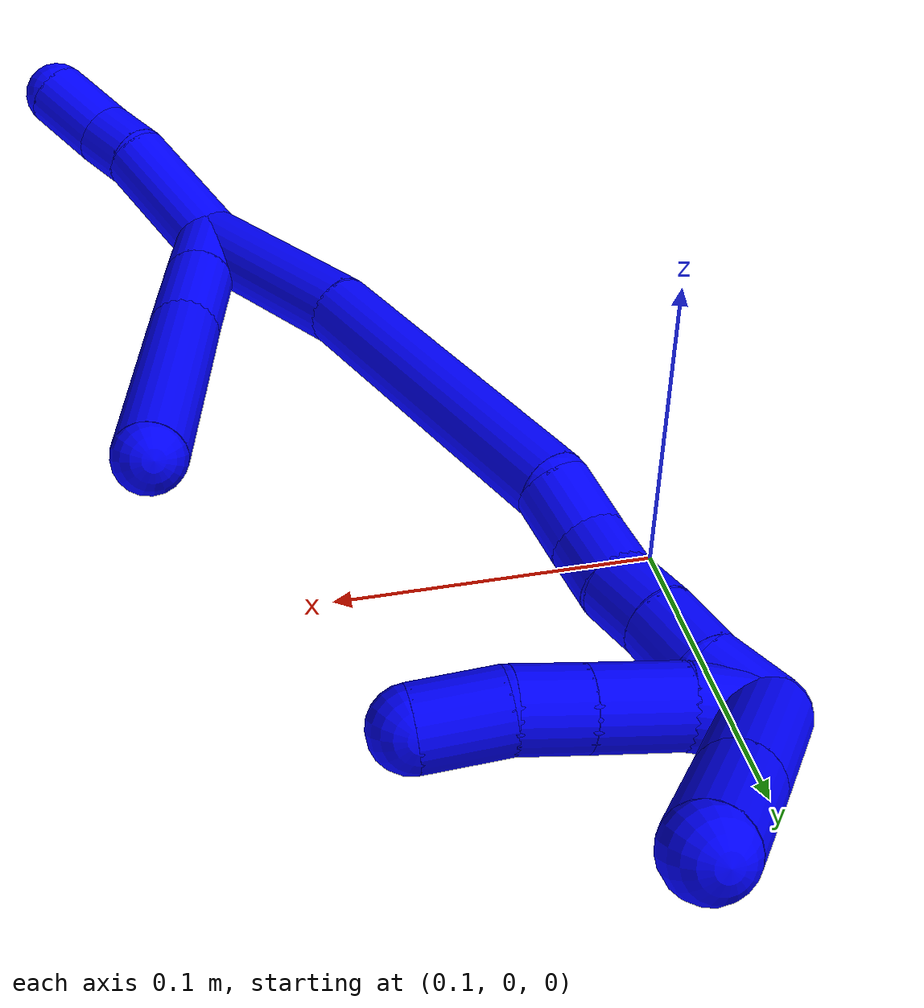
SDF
<sdf version="1.7">
 <world name="default">
  <model name="1">
   <static>0</static>
   <link name="1">
    <collision name="collision-cylinder-e_1_2_8">
     <pose>-0.006136 0.004923 -0.010705 -2.71053 -0.480085 1.68209</pose>
     <geometry><cylinder><radius>0.0125</radius><length>0.026569</length></cylinder></geometry>
     <surface>
      <friction><ode><mu>1.16</mu><mu2>1.16</mu2><slip1>0</slip1><slip2>0</slip2></ode></friction>
      <contact><ode><kp>1e+06</kp><kd>1</kd><max_vel>0</max_vel><min_depth>0.001</min_depth></ode></contact>
     </surface>
    </collision>
    <visual name="visual-cylinder-e_1_2_8">
     <pose>-0.006136 0.004923 -0.010705 -2.71053 -0.480085 1.68209</pose>
     <geometry><cylinder><radius>0.0125</radius><length>0.026569</length></cylinder></geometry>
     <material><ambient>0 0 1 1</ambient></material>
    </visual>
    <collision name="collision-cylinder-e_2_8_9">
     <pose>-0.01994 0.01596 -0.036441 -2.75528 -0.441518 1.70782</pose>
     <geometry><cylinder><radius>0.0125</radius><length>0.035896</length></cylinder></geometry>
     <surface>
      <friction><ode><mu>1.16</mu><mu2>1.16</mu2><slip1>0</slip1><slip2>0</slip2></ode></friction>
      <contact><ode><kp>1e+06</kp><kd>1</kd><max_vel>0</max_vel><min_depth>0.001</min_depth></ode></contact>
     </surface>
    </collision>
    <visual name="visual-cylinder-e_2_8_9">
     <pose>-0.01994 0.01596 -0.036441 -2.75528 -0.441518 1.70782</pose>
     <geometry><cylinder><radius>0.0125</radius><length>0.035896</length></cylinder></geometry>
     <material><ambient>0 0 1 1</ambient></material>
    </visual>
    <collision name="collision-cylinder-e_3_9_6">
     <pose>-0.0438 0.033866 -0.090387 -2.84739 -0.378927 1.82587</pose>
     <geometry><cylinder><radius>0.0125</radius><length>0.087535</length></cylinder></geometry>
     <surface>
      <friction><ode><mu>1.16</mu><mu2>1.16</mu2><slip1>0</slip1><slip2>0</slip2></ode></friction>
      <contact><ode><kp>1e+06</kp><kd>1</kd><max_vel>0</max_vel><min_depth>0.001</min_depth></ode></contact>
     </surface>
    </collision>
    <visual name="visual-cylinder-e_3_9_6">
     <pose>-0.0438 0.033866 -0.090387 -2.84739 -0.378927 1.82587</pose>
     <geometry><cylinder><radius>0.0125</radius><length>0.087535</length></cylinder></geometry>
     <material><ambient>0 0 1 1</ambient></material>
    </visual>
    <collision name="collision-cylinder-e_1_2_10">
     <pose>-0.005237 -0.019133 0.015352 0.894609 -0.210323 -0.101186</pose>
     <geometry><cylinder><radius>0.0125</radius><length>0.050168</length></cylinder></geometry>
     <surface>
      <friction><ode><mu>1.16</mu><mu2>1.16</mu2><slip1>0</slip1><slip2>0</slip2></ode></friction>
      <contact><ode><kp>1e+06</kp><kd>1</kd><max_vel>0</max_vel><min_depth>0.001</min_depth></ode></contact>
     </surface>
    </collision>
    <visual name="visual-cylinder-e_1_2_10">
     <pose>-0.005237 -0.019133 0.015352 0.894609 -0.210323 -0.101186</pose>
     <geometry><cylinder><radius>0.0125</radius><length>0.050168</length></cylinder></geometry>
     <material><ambient>0 0 1 1</ambient></material>
    </visual>
    <collision name="collision-cylinder-e_2_10_11">
     <pose>-0.013676 -0.044592 0.038094 0.707945 -0.318072 -0.118402</pose>
     <geometry><cylinder><radius>0.0125</radius><length>0.020481</length></cylinder></geometry>
     <surface>
      <friction><ode><mu>1.16</mu><mu2>1.16</mu2><slip1>0</slip1><slip2>0</slip2></ode></friction>
      <contact><ode><kp>1e+06</kp><kd>1</kd><max_vel>0</max_vel><min_depth>0.001</min_depth></ode></contact>
     </surface>
    </collision>
    <visual name="visual-cylinder-e_2_10_11">
     <pose>-0.013676 -0.044592 0.038094 0.707945 -0.318072 -0.118402</pose>
     <geometry><cylinder><radius>0.0125</radius><length>0.020481</length></cylinder></geometry>
     <material><ambient>0 0 1 1</ambient></material>
    </visual>
    <collision name="collision-cylinder-e_3_11_5">
     <pose>-0.021835 -0.061794 0.053998 0.906619 -0.344492 -0.169093</pose>
     <geometry><cylinder><radius>0.0125</radius><length>0.029351</length></cylinder></geometry>
     <surface>
      <friction><ode><mu>1.16</mu><mu2>1.16</mu2><slip1>0</slip1><slip2>0</slip2></ode></friction>
      <contact><ode><kp>1e+06</kp><kd>1</kd><max_vel>0</max_vel><min_depth>0.001</min_depth></ode></contact>
     </surface>
    </collision>
    <visual name="visual-cylinder-e_3_11_5">
     <pose>-0.021835 -0.061794 0.053998 0.906619 -0.344492 -0.169093</pose>
     <geometry><cylinder><radius>0.0125</radius><length>0.029351</length></cylinder></geometry>
     <material><ambient>0 0 1 1</ambient></material>
    </visual>
    <collision name="collision-cylinder-e_1_2_12">
     <pose>0.012662 0.017932 -0.030496 -2.61004 0.343707 -1.13522</pose>
     <geometry><cylinder><radius>0.0125</radius><length>0.07515</length></cylinder></geometry>
     <surface>
      <friction><ode><mu>1.16</mu><mu2>1.16</mu2><slip1>0</slip1><slip2>0</slip2></ode></friction>
      <contact><ode><kp>1e+06</kp><kd>1</kd><max_vel>0</max_vel><min_depth>0.001</min_depth></ode></contact>
     </surface>
    </collision>
    <visual name="visual-cylinder-e_1_2_12">
     <pose>0.012662 0.017932 -0.030496 -2.61004 0.343707 -1.13522</pose>
     <geometry><cylinder><radius>0.0125</radius><length>0.07515</length></cylinder></geometry>
     <material><ambient>0 0 1 1</ambient></material>
    </visual>
    <collision name="collision-cylinder-e_2_12_13">
     <pose>0.03714 0.067516 -0.109706 -2.56538 0.200658 -0.654917</pose>
     <geometry><cylinder><radius>0.0125</radius><length>0.118567</length></cylinder></geometry>
     <surface>
      <friction><ode><mu>1.16</mu><mu2>1.16</mu2><slip1>0</slip1><slip2>0</slip2></ode></friction>
      <contact><ode><kp>1e+06</kp><kd>1</kd><max_vel>0</max_vel><min_depth>0.001</min_depth></ode></contact>
     </surface>
    </collision>
    <visual name="visual-cylinder-e_2_12_13">
     <pose>0.03714 0.067516 -0.109706 -2.56538 0.200658 -0.654917</pose>
     <geometry><cylinder><radius>0.0125</radius><length>0.118567</length></cylinder></geometry>
     <material><ambient>0 0 1 1</ambient></material>
    </visual>
    <collision name="collision-cylinder-e_3_13_14">
     <pose>0.049384 0.107661 -0.165367 -2.25651 0.039006 -0.082274</pose>
     <geometry><cylinder><radius>0.0125</radius><length>0.021961</length></cylinder></geometry>
     <surface>
      <friction><ode><mu>1.16</mu><mu2>1.16</mu2><slip1>0</slip1><slip2>0</slip2></ode></friction>
      <contact><ode><kp>1e+06</kp><kd>1</kd><max_vel>0</max_vel><min_depth>0.001</min_depth></ode></contact>
     </surface>
    </collision>
    <visual name="visual-cylinder-e_3_13_14">
     <pose>0.049384 0.107661 -0.165367 -2.25651 0.039006 -0.082274</pose>
     <geometry><cylinder><radius>0.0125</radius><length>0.021961</length></cylinder></geometry>
     <material><ambient>0 0 1 1</ambient></material>
    </visual>
    <collision name="collision-cylinder-e_4_14_15">
     <pose>0.049435 0.121528 -0.180821 -2.57805 -0.037499 0.129376</pose>
     <geometry><cylinder><radius>0.0125</radius><length>0.020139</length></cylinder></geometry>
     <surface>
      <friction><ode><mu>1.16</mu><mu2>1.16</mu2><slip1>0</slip1><slip2>0</slip2></ode></friction>
      <contact><ode><kp>1e+06</kp><kd>1</kd><max_vel>0</max_vel><min_depth>0.001</min_depth></ode></contact>
     </surface>
    </collision>
    <visual name="visual-cylinder-e_4_14_15">
     <pose>0.049435 0.121528 -0.180821 -2.57805 -0.037499 0.129376</pose>
     <geometry><cylinder><radius>0.0125</radius><length>0.020139</length></cylinder></geometry>
     <material><ambient>0 0 1 1</ambient></material>
    </visual>
    <collision name="collision-cylinder-e_5_15_16">
     <pose>0.050519 0.131557 -0.198267 -2.66161 0.14397 -0.573136</pose>
     <geometry><cylinder><radius>0.0125</radius><length>0.020368</length></cylinder></geometry>
     <surface>
      <friction><ode><mu>1.16</mu><mu2>1.16</mu2><slip1>0</slip1><slip2>0</slip2></ode></friction>
      <contact><ode><kp>1e+06</kp><kd>1</kd><max_vel>0</max_vel><min_depth>0.001</min_depth></ode></contact>
     </surface>
    </collision>
    <visual name="visual-cylinder-e_5_15_16">
     <pose>0.050519 0.131557 -0.198267 -2.66161 0.14397 -0.573136</pose>
     <geometry><cylinder><radius>0.0125</radius><length>0.020368</length></cylinder></geometry>
     <material><ambient>0 0 1 1</ambient></material>
    </visual>
    <collision name="collision-cylinder-e_6_16_17">
     <pose>0.053034 0.141853 -0.216609 -2.6011 0.095904 -0.343053</pose>
     <geometry><cylinder><radius>0.0125</radius><length>0.02203</length></cylinder></geometry>
     <surface>
      <friction><ode><mu>1.16</mu><mu2>1.16</mu2><slip1>0</slip1><slip2>0</slip2></ode></friction>
      <contact><ode><kp>1e+06</kp><kd>1</kd><max_vel>0</max_vel><min_depth>0.001</min_depth></ode></contact>
     </surface>
    </collision>
    <visual name="visual-cylinder-e_6_16_17">
     <pose>0.053034 0.141853 -0.216609 -2.6011 0.095904 -0.343053</pose>
     <geometry><cylinder><radius>0.0125</radius><length>0.02203</length></cylinder></geometry>
     <material><ambient>0 0 1 1</ambient></material>
    </visual>
    <collision name="collision-cylinder-e_7_17_1">
     <pose>0.057838 0.154393 -0.23356 -2.40125 0.351305 -0.857908</pose>
     <geometry><cylinder><radius>0.0125</radius><length>0.021785</length></cylinder></geometry>
     <surface>
      <friction><ode><mu>1.16</mu><mu2>1.16</mu2><slip1>0</slip1><slip2>0</slip2></ode></friction>
      <contact><ode><kp>1e+06</kp><kd>1</kd><max_vel>0</max_vel><min_depth>0.001</min_depth></ode></contact>
     </surface>
    </collision>
    <visual name="visual-cylinder-e_7_17_1">
     <pose>0.057838 0.154393 -0.23356 -2.40125 0.351305 -0.857908</pose>
     <geometry><cylinder><radius>0.0125</radius><length>0.021785</length></cylinder></geometry>
     <material><ambient>0 0 1 1</ambient></material>
    </visual>
    <collision name="collision-cylinder-e_1_1_18">
     <pose>0.047287 0.157659 -0.264427 2.98702 -0.544782 -2.60071</pose>
     <geometry><cylinder><radius>0.0125</radius><length>0.055184</length></cylinder></geometry>
     <surface>
      <friction><ode><mu>1.16</mu><mu2>1.16</mu2><slip1>0</slip1><slip2>0</slip2></ode></friction>
      <contact><ode><kp>1e+06</kp><kd>1</kd><max_vel>0</max_vel><min_depth>0.001</min_depth></ode></contact>
     </surface>
    </collision>
    <visual name="visual-cylinder-e_1_1_18">
     <pose>0.047287 0.157659 -0.264427 2.98702 -0.544782 -2.60071</pose>
     <geometry><cylinder><radius>0.0125</radius><length>0.055184</length></cylinder></geometry>
     <material><ambient>0 0 1 1</ambient></material>
    </visual>
    <collision name="collision-cylinder-e_2_18_4">
     <pose>0.021546 0.150709 -0.306722 2.96858 -0.53593 -2.52972</pose>
     <geometry><cylinder><radius>0.0125</radius><length>0.044816</length></cylinder></geometry>
     <surface>
      <friction><ode><mu>1.16</mu><mu2>1.16</mu2><slip1>0</slip1><slip2>0</slip2></ode></friction>
      <contact><ode><kp>1e+06</kp><kd>1</kd><max_vel>0</max_vel><min_depth>0.001</min_depth></ode></contact>
     </surface>
    </collision>
    <visual name="visual-cylinder-e_2_18_4">
     <pose>0.021546 0.150709 -0.306722 2.96858 -0.53593 -2.52972</pose>
     <geometry><cylinder><radius>0.0125</radius><length>0.044816</length></cylinder></geometry>
     <material><ambient>0 0 1 1</ambient></material>
    </visual>
    <collision name="collision-cylinder-e_1_1_19">
     <pose>0.051607 0.15551 -0.239405 1.28394 -1.02731 -0.798277</pose>
     <geometry><cylinder><radius>0.0125</radius><length>0.023318</length></cylinder></geometry>
     <surface>
      <friction><ode><mu>1.16</mu><mu2>1.16</mu2><slip1>0</slip1><slip2>0</slip2></ode></friction>
      <contact><ode><kp>1e+06</kp><kd>1</kd><max_vel>0</max_vel><min_depth>0.001</min_depth></ode></contact>
     </surface>
    </collision>
    <visual name="visual-cylinder-e_1_1_19">
     <pose>0.051607 0.15551 -0.239405 1.28394 -1.02731 -0.798277</pose>
     <geometry><cylinder><radius>0.0125</radius><length>0.023318</length></cylinder></geometry>
     <material><ambient>0 0 1 1</ambient></material>
    </visual>
    <collision name="collision-cylinder-e_2_19_20">
     <pose>0.028597 0.144125 -0.237449 1.52626 -1.16441 -1.12385</pose>
     <geometry><cylinder><radius>0.0125</radius><length>0.028372</length></cylinder></geometry>
     <surface>
      <friction><ode><mu>1.16</mu><mu2>1.16</mu2><slip1>0</slip1><slip2>0</slip2></ode></friction>
      <contact><ode><kp>1e+06</kp><kd>1</kd><max_vel>0</max_vel><min_depth>0.001</min_depth></ode></contact>
     </surface>
    </collision>
    <visual name="visual-cylinder-e_2_19_20">
     <pose>0.028597 0.144125 -0.237449 1.52626 -1.16441 -1.12385</pose>
     <geometry><cylinder><radius>0.0125</radius><length>0.028372</length></cylinder></geometry>
     <material><ambient>0 0 1 1</ambient></material>
    </visual>
    <collision name="collision-cylinder-e_3_20_21">
     <pose>0.005723 0.134272 -0.236816 1.48087 -1.16174 -1.08067</pose>
     <geometry><cylinder><radius>0.0125</radius><length>0.021459</length></cylinder></geometry>
     <surface>
      <friction><ode><mu>1.16</mu><mu2>1.16</mu2><slip1>0</slip1><slip2>0</slip2></ode></friction>
      <contact><ode><kp>1e+06</kp><kd>1</kd><max_vel>0</max_vel><min_depth>0.001</min_depth></ode></contact>
     </surface>
    </collision>
    <visual name="visual-cylinder-e_3_20_21">
     <pose>0.005723 0.134272 -0.236816 1.48087 -1.16174 -1.08067</pose>
     <geometry><cylinder><radius>0.0125</radius><length>0.021459</length></cylinder></geometry>
     <material><ambient>0 0 1 1</ambient></material>
    </visual>
    <collision name="collision-cylinder-e_4_21_3">
     <pose>-0.017167 0.127097 -0.2352 1.17188 -1.33213 -0.961516</pose>
     <geometry><cylinder><radius>0.0125</radius><length>0.026851</length></cylinder></geometry>
     <surface>
      <friction><ode><mu>1.16</mu><mu2>1.16</mu2><slip1>0</slip1><slip2>0</slip2></ode></friction>
      <contact><ode><kp>1e+06</kp><kd>1</kd><max_vel>0</max_vel><min_depth>0.001</min_depth></ode></contact>
     </surface>
    </collision>
    <visual name="visual-cylinder-e_4_21_3">
     <pose>-0.017167 0.127097 -0.2352 1.17188 -1.33213 -0.961516</pose>
     <geometry><cylinder><radius>0.0125</radius><length>0.026851</length></cylinder></geometry>
     <material><ambient>0 0 1 1</ambient></material>
    </visual>
    <collision name="collision-sphere-3">
     <pose>-0.030212 0.124173 -0.233968 0 -0 0</pose>
     <geometry><sphere><radius>0.0125</radius></sphere></geometry>
     <surface>
      <friction><ode><mu>1.16</mu><mu2>1.16</mu2><slip1>0</slip1><slip2>0</slip2></ode></friction>
      <contact><ode><kp>1e+06</kp><kd>1</kd><max_vel>0</max_vel><min_depth>0.001</min_depth></ode></contact>
     </surface>
    </collision>
    <visual name="visual-sphere-3">
     <pose>-0.030212 0.124173 -0.233968 0 -0 0</pose>
     <geometry><sphere><radius>0.0125</radius></sphere></geometry>
     <material><ambient>0 0 1 1</ambient></material>
    </visual>
    <collision name="collision-sphere-21">
     <pose>-0.004122 0.130022 -0.236433 0 -0 0</pose>
     <geometry><sphere><radius>0.0125</radius></sphere></geometry>
     <surface>
      <friction><ode><mu>1.16</mu><mu2>1.16</mu2><slip1>0</slip1><slip2>0</slip2></ode></friction>
      <contact><ode><kp>1e+06</kp><kd>1</kd><max_vel>0</max_vel><min_depth>0.001</min_depth></ode></contact>
     </surface>
    </collision>
    <visual name="visual-sphere-21">
     <pose>-0.004122 0.130022 -0.236433 0 -0 0</pose>
     <geometry><sphere><radius>0.0125</radius></sphere></geometry>
     <material><ambient>0 0 1 1</ambient></material>
    </visual>
    <collision name="collision-sphere-20">
     <pose>0.015567 0.138523 -0.2372 0 -0 0</pose>
     <geometry><sphere><radius>0.0125</radius></sphere></geometry>
     <surface>
      <friction><ode><mu>1.16</mu><mu2>1.16</mu2><slip1>0</slip1><slip2>0</slip2></ode></friction>
      <contact><ode><kp>1e+06</kp><kd>1</kd><max_vel>0</max_vel><min_depth>0.001</min_depth></ode></contact>
     </surface>
    </collision>
    <visual name="visual-sphere-20">
     <pose>0.015567 0.138523 -0.2372 0 -0 0</pose>
     <geometry><sphere><radius>0.0125</radius></sphere></geometry>
     <material><ambient>0 0 1 1</ambient></material>
    </visual>
    <collision name="collision-sphere-19">
     <pose>0.041628 0.149727 -0.237699 0 -0 0</pose>
     <geometry><sphere><radius>0.0125</radius></sphere></geometry>
     <surface>
      <friction><ode><mu>1.16</mu><mu2>1.16</mu2><slip1>0</slip1><slip2>0</slip2></ode></friction>
      <contact><ode><kp>1e+06</kp><kd>1</kd><max_vel>0</max_vel><min_depth>0.001</min_depth></ode></contact>
     </surface>
    </collision>
    <visual name="visual-sphere-19">
     <pose>0.041628 0.149727 -0.237699 0 -0 0</pose>
     <geometry><sphere><radius>0.0125</radius></sphere></geometry>
     <material><ambient>0 0 1 1</ambient></material>
    </visual>
    <collision name="collision-sphere-11">
     <pose>-0.016879 -0.050917 0.045483 0 -0 0</pose>
     <geometry><sphere><radius>0.0125</radius></sphere></geometry>
     <surface>
      <friction><ode><mu>1.16</mu><mu2>1.16</mu2><slip1>0</slip1><slip2>0</slip2></ode></friction>
      <contact><ode><kp>1e+06</kp><kd>1</kd><max_vel>0</max_vel><min_depth>0.001</min_depth></ode></contact>
     </surface>
    </collision>
    <visual name="visual-sphere-11">
     <pose>-0.016879 -0.050917 0.045483 0 -0 0</pose>
     <geometry><sphere><radius>0.0125</radius></sphere></geometry>
     <material><ambient>0 0 1 1</ambient></material>
    </visual>
    <collision name="collision-sphere-10">
     <pose>-0.010474 -0.038267 0.030704 0 -0 0</pose>
     <geometry><sphere><radius>0.0125</radius></sphere></geometry>
     <surface>
      <friction><ode><mu>1.16</mu><mu2>1.16</mu2><slip1>0</slip1><slip2>0</slip2></ode></friction>
      <contact><ode><kp>1e+06</kp><kd>1</kd><max_vel>0</max_vel><min_depth>0.001</min_depth></ode></contact>
     </surface>
    </collision>
    <visual name="visual-sphere-10">
     <pose>-0.010474 -0.038267 0.030704 0 -0 0</pose>
     <geometry><sphere><radius>0.0125</radius></sphere></geometry>
     <material><ambient>0 0 1 1</ambient></material>
    </visual>
    <collision name="collision-sphere-6">
     <pose>-0.059991 0.045657 -0.129303 0 -0 0</pose>
     <geometry><sphere><radius>0.0125</radius></sphere></geometry>
     <surface>
      <friction><ode><mu>1.16</mu><mu2>1.16</mu2><slip1>0</slip1><slip2>0</slip2></ode></friction>
      <contact><ode><kp>1e+06</kp><kd>1</kd><max_vel>0</max_vel><min_depth>0.001</min_depth></ode></contact>
     </surface>
    </collision>
    <visual name="visual-sphere-6">
     <pose>-0.059991 0.045657 -0.129303 0 -0 0</pose>
     <geometry><sphere><radius>0.0125</radius></sphere></geometry>
     <material><ambient>0 0 1 1</ambient></material>
    </visual>
    <collision name="collision-sphere-9">
     <pose>-0.02761 0.022074 -0.051472 0 -0 0</pose>
     <geometry><sphere><radius>0.0125</radius></sphere></geometry>
     <surface>
      <friction><ode><mu>1.16</mu><mu2>1.16</mu2><slip1>0</slip1><slip2>0</slip2></ode></friction>
      <contact><ode><kp>1e+06</kp><kd>1</kd><max_vel>0</max_vel><min_depth>0.001</min_depth></ode></contact>
     </surface>
    </collision>
    <visual name="visual-sphere-9">
     <pose>-0.02761 0.022074 -0.051472 0 -0 0</pose>
     <geometry><sphere><radius>0.0125</radius></sphere></geometry>
     <material><ambient>0 0 1 1</ambient></material>
    </visual>
    <collision name="collision-sphere-2">
     <geometry><sphere><radius>0.0125</radius></sphere></geometry>
     <surface>
      <friction><ode><mu>1.16</mu><mu2>1.16</mu2><slip1>0</slip1><slip2>0</slip2></ode></friction>
      <contact><ode><kp>1e+06</kp><kd>1</kd><max_vel>0</max_vel><min_depth>0.001</min_depth></ode></contact>
     </surface>
    </collision>
    <visual name="visual-sphere-2">
     <geometry><sphere><radius>0.0125</radius></sphere></geometry>
     <material><ambient>0 0 1 1</ambient></material>
    </visual>
    <collision name="collision-sphere-8">
     <pose>-0.012271 0.009847 -0.02141 0 -0 0</pose>
     <geometry><sphere><radius>0.0125</radius></sphere></geometry>
     <surface>
      <friction><ode><mu>1.16</mu><mu2>1.16</mu2><slip1>0</slip1><slip2>0</slip2></ode></friction>
      <contact><ode><kp>1e+06</kp><kd>1</kd><max_vel>0</max_vel><min_depth>0.001</min_depth></ode></contact>
     </surface>
    </collision>
    <visual name="visual-sphere-8">
     <pose>-0.012271 0.009847 -0.02141 0 -0 0</pose>
     <geometry><sphere><radius>0.0125</radius></sphere></geometry>
     <material><ambient>0 0 1 1</ambient></material>
    </visual>
    <collision name="collision-sphere-5">
     <pose>-0.026791 -0.072671 0.062513 0 -0 0</pose>
     <geometry><sphere><radius>0.0125</radius></sphere></geometry>
     <surface>
      <friction><ode><mu>1.16</mu><mu2>1.16</mu2><slip1>0</slip1><slip2>0</slip2></ode></friction>
      <contact><ode><kp>1e+06</kp><kd>1</kd><max_vel>0</max_vel><min_depth>0.001</min_depth></ode></contact>
     </surface>
    </collision>
    <visual name="visual-sphere-5">
     <pose>-0.026791 -0.072671 0.062513 0 -0 0</pose>
     <geometry><sphere><radius>0.0125</radius></sphere></geometry>
     <material><ambient>0 0 1 1</ambient></material>
    </visual>
    <collision name="collision-sphere-12">
     <pose>0.025324 0.035864 -0.060992 0 -0 0</pose>
     <geometry><sphere><radius>0.0125</radius></sphere></geometry>
     <surface>
      <friction><ode><mu>1.16</mu><mu2>1.16</mu2><slip1>0</slip1><slip2>0</slip2></ode></friction>
      <contact><ode><kp>1e+06</kp><kd>1</kd><max_vel>0</max_vel><min_depth>0.001</min_depth></ode></contact>
     </surface>
    </collision>
    <visual name="visual-sphere-12">
     <pose>0.025324 0.035864 -0.060992 0 -0 0</pose>
     <geometry><sphere><radius>0.0125</radius></sphere></geometry>
     <material><ambient>0 0 1 1</ambient></material>
    </visual>
    <collision name="collision-sphere-13">
     <pose>0.048956 0.099169 -0.158419 0 -0 0</pose>
     <geometry><sphere><radius>0.0125</radius></sphere></geometry>
     <surface>
      <friction><ode><mu>1.16</mu><mu2>1.16</mu2><slip1>0</slip1><slip2>0</slip2></ode></friction>
      <contact><ode><kp>1e+06</kp><kd>1</kd><max_vel>0</max_vel><min_depth>0.001</min_depth></ode></contact>
     </surface>
    </collision>
    <visual name="visual-sphere-13">
     <pose>0.048956 0.099169 -0.158419 0 -0 0</pose>
     <geometry><sphere><radius>0.0125</radius></sphere></geometry>
     <material><ambient>0 0 1 1</ambient></material>
    </visual>
    <collision name="collision-sphere-14">
     <pose>0.049812 0.116153 -0.172315 0 -0 0</pose>
     <geometry><sphere><radius>0.0125</radius></sphere></geometry>
     <surface>
      <friction><ode><mu>1.16</mu><mu2>1.16</mu2><slip1>0</slip1><slip2>0</slip2></ode></friction>
      <contact><ode><kp>1e+06</kp><kd>1</kd><max_vel>0</max_vel><min_depth>0.001</min_depth></ode></contact>
     </surface>
    </collision>
    <visual name="visual-sphere-14">
     <pose>0.049812 0.116153 -0.172315 0 -0 0</pose>
     <geometry><sphere><radius>0.0125</radius></sphere></geometry>
     <material><ambient>0 0 1 1</ambient></material>
    </visual>
    <collision name="collision-sphere-15">
     <pose>0.049057 0.126903 -0.189328 0 -0 0</pose>
     <geometry><sphere><radius>0.0125</radius></sphere></geometry>
     <surface>
      <friction><ode><mu>1.16</mu><mu2>1.16</mu2><slip1>0</slip1><slip2>0</slip2></ode></friction>
      <contact><ode><kp>1e+06</kp><kd>1</kd><max_vel>0</max_vel><min_depth>0.001</min_depth></ode></contact>
     </surface>
    </collision>
    <visual name="visual-sphere-15">
     <pose>0.049057 0.126903 -0.189328 0 -0 0</pose>
     <geometry><sphere><radius>0.0125</radius></sphere></geometry>
     <material><ambient>0 0 1 1</ambient></material>
    </visual>
    <collision name="collision-sphere-16">
     <pose>0.05198 0.136211 -0.207207 0 -0 0</pose>
     <geometry><sphere><radius>0.0125</radius></sphere></geometry>
     <surface>
      <friction><ode><mu>1.16</mu><mu2>1.16</mu2><slip1>0</slip1><slip2>0</slip2></ode></friction>
      <contact><ode><kp>1e+06</kp><kd>1</kd><max_vel>0</max_vel><min_depth>0.001</min_depth></ode></contact>
     </surface>
    </collision>
    <visual name="visual-sphere-16">
     <pose>0.05198 0.136211 -0.207207 0 -0 0</pose>
     <geometry><sphere><radius>0.0125</radius></sphere></geometry>
     <material><ambient>0 0 1 1</ambient></material>
    </visual>
    <collision name="collision-sphere-17">
     <pose>0.054089 0.147495 -0.22601 0 -0 0</pose>
     <geometry><sphere><radius>0.0125</radius></sphere></geometry>
     <surface>
      <friction><ode><mu>1.16</mu><mu2>1.16</mu2><slip1>0</slip1><slip2>0</slip2></ode></friction>
      <contact><ode><kp>1e+06</kp><kd>1</kd><max_vel>0</max_vel><min_depth>0.001</min_depth></ode></contact>
     </surface>
    </collision>
    <visual name="visual-sphere-17">
     <pose>0.054089 0.147495 -0.22601 0 -0 0</pose>
     <geometry><sphere><radius>0.0125</radius></sphere></geometry>
     <material><ambient>0 0 1 1</ambient></material>
    </visual>
    <collision name="collision-sphere-1">
     <pose>0.061586 0.161292 -0.241111 0 -0 0</pose>
     <geometry><sphere><radius>0.0125</radius></sphere></geometry>
     <surface>
      <friction><ode><mu>1.16</mu><mu2>1.16</mu2><slip1>0</slip1><slip2>0</slip2></ode></friction>
      <contact><ode><kp>1e+06</kp><kd>1</kd><max_vel>0</max_vel><min_depth>0.001</min_depth></ode></contact>
     </surface>
    </collision>
    <visual name="visual-sphere-1">
     <pose>0.061586 0.161292 -0.241111 0 -0 0</pose>
     <geometry><sphere><radius>0.0125</radius></sphere></geometry>
     <material><ambient>0 0 1 1</ambient></material>
    </visual>
    <collision name="collision-sphere-18">
     <pose>0.032988 0.154026 -0.287744 0 -0 0</pose>
     <geometry><sphere><radius>0.0125</radius></sphere></geometry>
     <surface>
      <friction><ode><mu>1.16</mu><mu2>1.16</mu2><slip1>0</slip1><slip2>0</slip2></ode></friction>
      <contact><ode><kp>1e+06</kp><kd>1</kd><max_vel>0</max_vel><min_depth>0.001</min_depth></ode></contact>
     </surface>
    </collision>
    <visual name="visual-sphere-18">
     <pose>0.032988 0.154026 -0.287744 0 -0 0</pose>
     <geometry><sphere><radius>0.0125</radius></sphere></geometry>
     <material><ambient>0 0 1 1</ambient></material>
    </visual>
    <collision name="collision-sphere-4">
     <pose>0.010103 0.147393 -0.325701 0 -0 0</pose>
     <geometry><sphere><radius>0.0125</radius></sphere></geometry>
     <surface>
      <friction><ode><mu>1.16</mu><mu2>1.16</mu2><slip1>0</slip1><slip2>0</slip2></ode></friction>
      <contact><ode><kp>1e+06</kp><kd>1</kd><max_vel>0</max_vel><min_depth>0.001</min_depth></ode></contact>
     </surface>
    </collision>
    <visual name="visual-sphere-4">
     <pose>0.010103 0.147393 -0.325701 0 -0 0</pose>
     <geometry><sphere><radius>0.0125</radius></sphere></geometry>
     <material><ambient>0 0 1 1</ambient></material>
    </visual>
    <inertial>
     <pose>0.013664 0.07037 -0.126526 0 -0 0</pose>
     <mass>0.75</mass>
     <inertia>
      <ixx>2.9e-05</ixx>
      <ixy>0</ixy>
      <ixz>0</ixz>
      <iyy>-0.000106</iyy>
      <iyz>0</iyz>
      <izz>-0.00012</izz>
     </inertia>
    </inertial>
   </link>
   <pose>0.209063 -0.192411 0.011499 -2.11467 -0.213079 -2.95951</pose>
  </model>
 </world>
</sdf>
